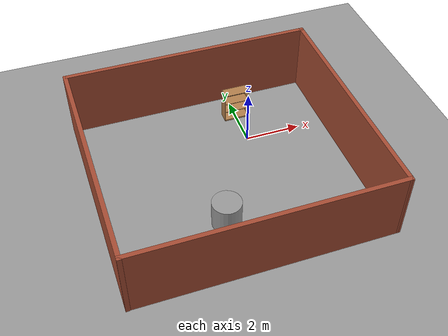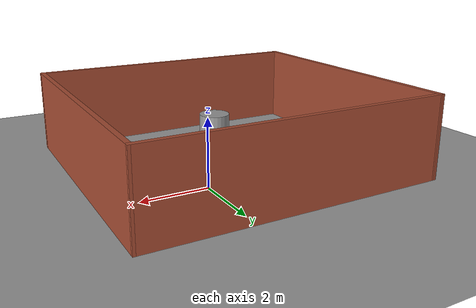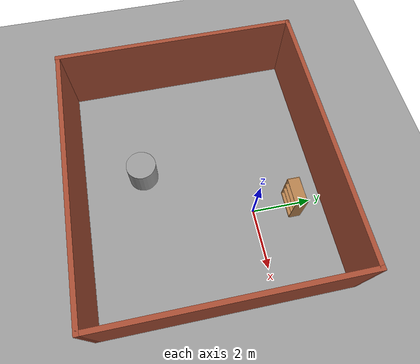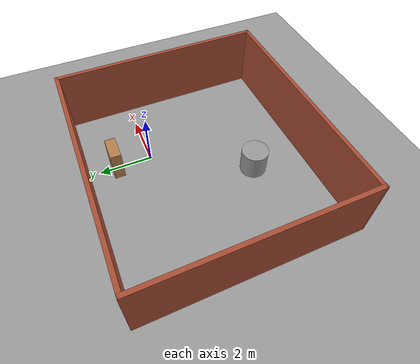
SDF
<sdf version="1.6">
 <world name="default">
  <light name="sun" type="directional">
   <pose>0 0 10 0 -0 0</pose>
   <diffuse>0.8 0.8 0.8 1</diffuse>
   <specular>0.2 0.2 0.2 1</specular>
   <attenuation>
    <range>1000</range>
    <constant>0.9</constant>
    <linear>0.01</linear>
    <quadratic>0.001</quadratic>
   </attenuation>
   <direction>0.5 0.1 -0.9</direction>
  </light>
  <scene><ambient>0.4 0.4 0.4 1</ambient><background>0.7 0.7 0.7 1</background><shadows>1</shadows></scene>
  <physics name="default_physics" default="0" type="ode">
   <max_step_size>0.01</max_step_size>
   <real_time_factor>1</real_time_factor>
   <real_time_update_rate>100</real_time_update_rate>
  </physics>
  <model name="bookshelf">
   <static>1</static>
   <link name="link">
    <inertial><mass>1</mass></inertial>
    <collision name="back">
     <pose>0 0.005 0.6 0 -0 0</pose>
     <geometry><box><size>0.9 0.01 1.2</size></box></geometry>
    </collision>
    <visual name="visual1">
     <pose>0 0.005 0.6 0 -0 0</pose>
     <geometry><box><size>0.9 0.01 1.2</size></box></geometry>
     <material>
      <script><uri>file://media/materials/scripts/gazebo.material</uri><name>Gazebo/Wood</name></script>
     </material>
    </visual>
    <collision name="left_side">
     <pose>0.45 -0.195 0.6 0 -0 0</pose>
     <geometry><box><size>0.02 0.4 1.2</size></box></geometry>
    </collision>
    <visual name="visual2">
     <pose>0.45 -0.195 0.6 0 -0 0</pose>
     <geometry><box><size>0.02 0.4 1.2</size></box></geometry>
     <material>
      <script><uri>file://media/materials/scripts/gazebo.material</uri><name>Gazebo/Wood</name></script>
     </material>
    </visual>
    <collision name="right_side">
     <pose>-0.45 -0.195 0.6 0 -0 0</pose>
     <geometry><box><size>0.02 0.4 1.2</size></box></geometry>
    </collision>
    <visual name="visual3">
     <pose>-0.45 -0.195 0.6 0 -0 0</pose>
     <geometry><box><size>0.02 0.4 1.2</size></box></geometry>
     <material>
      <script><uri>file://media/materials/scripts/gazebo.material</uri><name>Gazebo/Wood</name></script>
     </material>
    </visual>
    <collision name="bottom">
     <pose>0 -0.195 0.03 0 -0 0</pose>
     <geometry><box><size>0.88 0.4 0.06</size></box></geometry>
    </collision>
    <visual name="visual4">
     <pose>0 -0.195 0.03 0 -0 0</pose>
     <geometry><box><size>0.88 0.4 0.06</size></box></geometry>
     <material>
      <script><uri>file://media/materials/scripts/gazebo.material</uri><name>Gazebo/Wood</name></script>
     </material>
    </visual>
    <collision name="top">
     <pose>0 -0.195 1.19 0 -0 0</pose>
     <geometry><box><size>0.88 0.4 0.02</size></box></geometry>
    </collision>
    <visual name="visual5">
     <pose>0 -0.195 1.19 0 -0 0</pose>
     <geometry><box><size>0.88 0.4 0.02</size></box></geometry>
     <material>
      <script><uri>file://media/materials/scripts/gazebo.material</uri><name>Gazebo/Wood</name></script>
     </material>
    </visual>
    <collision name="low_shelf">
     <pose>0 -0.195 0.43 0 -0 0</pose>
     <geometry><box><size>0.88 0.4 0.02</size></box></geometry>
    </collision>
    <visual name="visual6">
     <pose>0 -0.195 0.43 0 -0 0</pose>
     <geometry><box><size>0.88 0.4 0.02</size></box></geometry>
     <material>
      <script><uri>file://media/materials/scripts/gazebo.material</uri><name>Gazebo/Wood</name></script>
     </material>
    </visual>
    <collision name="high_shelf">
     <pose>0 -0.195 0.8 0 -0 0</pose>
     <geometry><box><size>0.88 0.4 0.02</size></box></geometry>
    </collision>
    <visual name="visual7">
     <pose>0 -0.195 0.8 0 -0 0</pose>
     <geometry><box><size>0.88 0.4 0.02</size></box></geometry>
     <material>
      <script><uri>file://media/materials/scripts/gazebo.material</uri><name>Gazebo/Wood</name></script>
     </material>
    </visual>
    <velocity_decay><linear>0</linear><angular>0</angular></velocity_decay>
   </link>
   <pose>0 1.53026 0 0 -0 0</pose>
  </model>
  <model name="ground_plane_0">
   <static>1</static>
   <link name="link">
    <collision name="collision">
     <geometry><plane><normal>0 0 1</normal><size>100 100</size></plane></geometry>
     <surface><friction><ode><mu>100</mu><mu2>50</mu2></ode></friction></surface>
    </collision>
    <visual name="visual">
     <cast_shadows>0</cast_shadows>
     <geometry><plane><normal>0 0 1</normal><size>100 100</size></plane></geometry>
     <material>
      <script><uri>file://media/materials/scripts/gazebo.material</uri><name>Gazebo/Grey</name></script>
     </material>
    </visual>
    <velocity_decay><linear>0</linear><angular>0</angular></velocity_decay>
   </link>
   <pose>0.497681 0 0 0 -0 0</pose>
  </model>
  <model name="unit_cylinder_1">
   <pose>-2 -3.4888 0.49912 0 -0 0</pose>
   <link name="link">
    <inertial>
     <mass>1</mass>
     <inertia><ixx>1</ixx><ixy>0</ixy><ixz>0</ixz><iyy>1</iyy><iyz>0</iyz><izz>1</izz></inertia>
    </inertial>
    <collision name="collision">
     <geometry><cylinder><radius>0.5</radius><length>1</length></cylinder></geometry>
    </collision>
    <visual name="visual">
     <geometry><cylinder><radius>0.5</radius><length>1</length></cylinder></geometry>
     <material>
      <script><uri>file://media/materials/scripts/gazebo.material</uri><name>Gazebo/Grey</name></script>
     </material>
    </visual>
    <velocity_decay><linear>0</linear><angular>0</angular></velocity_decay>
   </link>
   <static>0</static>
  </model>
  <gravity>0 0 -9.8</gravity>
  <magnetic_field>6e-06 2.3e-05 -4.2e-05</magnetic_field>
  <atmosphere type="adiabatic"/>
  <spherical_coordinates>
   <surface_model>EARTH_WGS84</surface_model>
   <latitude_deg>0</latitude_deg>
   <longitude_deg>0</longitude_deg>
   <elevation>0</elevation>
   <heading_deg>0</heading_deg>
  </spherical_coordinates>
  <model name="HW_12_env">
   <pose>-1.39948 -1.57519 0 0 -0 0</pose>
   <link name="Wall_10">
    <collision name="Wall_10_Collision">
     <geometry><box><size>8.25 0.15 2.5</size></box></geometry>
     <pose>0 0 1.25 0 -0 0</pose>
    </collision>
    <visual name="Wall_10_Visual">
     <pose>0 0 1.25 0 -0 0</pose>
     <geometry><box><size>8.25 0.15 2.5</size></box></geometry>
     <material>
      <script><uri>file://media/materials/scripts/gazebo.material</uri><name>Gazebo/Bricks</name></script>
      <ambient>1 1 1 1</ambient>
     </material>
    </visual>
    <pose>-4.42488 0 0 0 0 -1.56423</pose>
   </link>
   <link name="Wall_7">
    <collision name="Wall_7_Collision">
     <geometry><box><size>9 0.15 2.5</size></box></geometry>
     <pose>0 0 1.25 0 -0 0</pose>
    </collision>
    <visual name="Wall_7_Visual">
     <pose>0 0 1.25 0 -0 0</pose>
     <geometry><box><size>9 0.15 2.5</size></box></geometry>
     <material>
      <script><uri>file://media/materials/scripts/gazebo.material</uri><name>Gazebo/Bricks</name></script>
      <ambient>1 1 1 1</ambient>
     </material>
    </visual>
    <pose>0.026722 -4.03677 0 0 -0 0</pose>
   </link>
   <link name="Wall_8">
    <collision name="Wall_8_Collision">
     <geometry><box><size>8.23682 0.15 2.5</size></box></geometry>
     <pose>0 0 1.25 0 -0 0</pose>
    </collision>
    <visual name="Wall_8_Visual">
     <pose>0 0 1.25 0 -0 0</pose>
     <geometry><box><size>8.23682 0.15 2.5</size></box></geometry>
     <material>
      <script><uri>file://media/materials/scripts/gazebo.material</uri><name>Gazebo/Bricks</name></script>
      <ambient>1 1 1 1</ambient>
     </material>
    </visual>
    <pose>4.43842 0.006613 0 0 -0 1.57409</pose>
   </link>
   <link name="Wall_9">
    <collision name="Wall_9_Collision">
     <geometry><box><size>9 0.15 2.5</size></box></geometry>
     <pose>0 0 1.25 0 -0 0</pose>
    </collision>
    <visual name="Wall_9_Visual">
     <pose>0 0 1.25 0 -0 0</pose>
     <geometry><box><size>9 0.15 2.5</size></box></geometry>
     <material>
      <script><uri>file://media/materials/scripts/gazebo.material</uri><name>Gazebo/Bricks</name></script>
      <ambient>1 1 1 1</ambient>
     </material>
    </visual>
    <pose>0.000121 4.05 0 0 -0 3.14159</pose>
   </link>
   <static>1</static>
  </model>
 </world>
</sdf>
